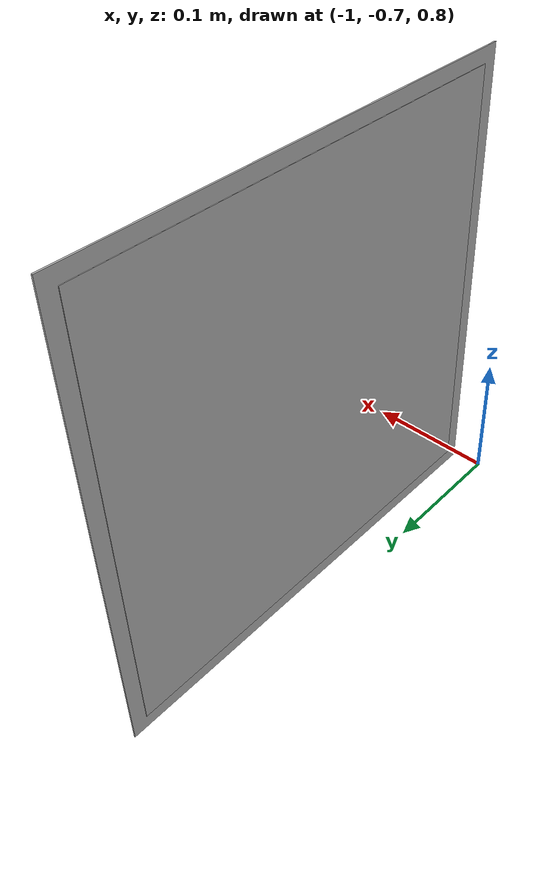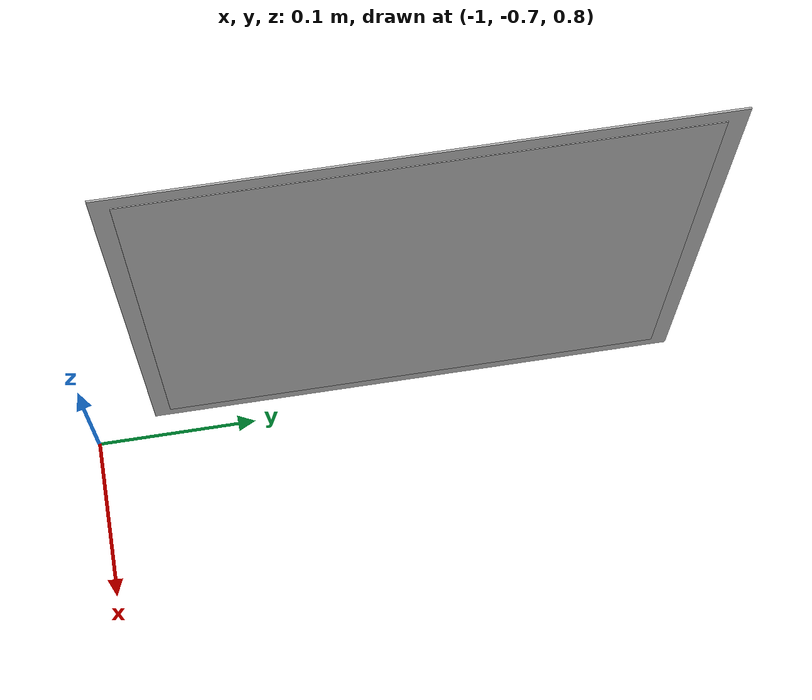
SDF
<?xml version="1.0" ?>
<sdf version="1.5">
  <world name="leonardo_race_field">
    <!-- A ground plane -->
    <physics name='default_physics' default='0' type='ode'>
      <gravity>0 0 -9.8066</gravity>
      <ode>
        <solver>
          <type>quick</type>
          <iters>10</iters>
          <sor>1.3</sor>
          <use_dynamic_moi_rescaling>0</use_dynamic_moi_rescaling>
        </solver>
        <constraints>
          <cfm>0</cfm>
          <erp>0.2</erp>
          <contact_max_correcting_vel>100</contact_max_correcting_vel>
          <contact_surface_layer>0.001</contact_surface_layer>
        </constraints>
      </ode>
      <max_step_size>0.004</max_step_size>
      <real_time_factor>1</real_time_factor>
      <real_time_update_rate>250</real_time_update_rate>
      <magnetic_field>6.0e-6 2.3e-5 -4.2e-5</magnetic_field>
    </physics>

    <light type="directional" name="sun">
      <cast_shadows>true</cast_shadows>
      <pose>0 0 10 0 0 0</pose>
      <diffuse>0.8 0.8 0.8 1</diffuse>
      <specular>0.2 0.2 0.2 1</specular>
      <attenuation>
        <range>1000</range>
        <constant>0.9</constant>
        <linear>0.01</linear>
        <quadratic>0.001</quadratic>
      </attenuation>
      <direction>-0.5 0.1 -0.9</direction>
    </light>

    <!-- AR markers -->
    <include>
      <name>tool_0_tag</name>
      <uri>model://marker_0</uri>
      <pose>-1 -0.5 1 0 1.57 0</pose>
    </include>

  </world>
</sdf>

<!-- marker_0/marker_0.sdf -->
<sdf version="1.4">
  <model name="marker_0">
    <static>true</static>
    <link name="marker">
      <gravity>false</gravity>
      <visual name="tag">
        <geometry>
          <box>
            <size>0.30 0.30 0.002</size>
          </box>
        </geometry>
        <material>
          <script>
            <uri>model://marker_0/material/scripts</uri>
            <uri>model://marker_0/material/textures</uri>
            <name>marker_0</name>
          </script>
        </material>
      </visual>
      <visual name="support">
        <geometry>
          <box>
            <size>0.32 0.32 0.001</size>
          </box>
        </geometry>
        <material>Gazebo/White</material>
      </visual>

      <collision name="collision">
        <geometry>
          <box>
            <size>0.32 0.32 0.001</size>
          </box>
        </geometry>
      </collision>
    </link>
  </model>
</sdf>
